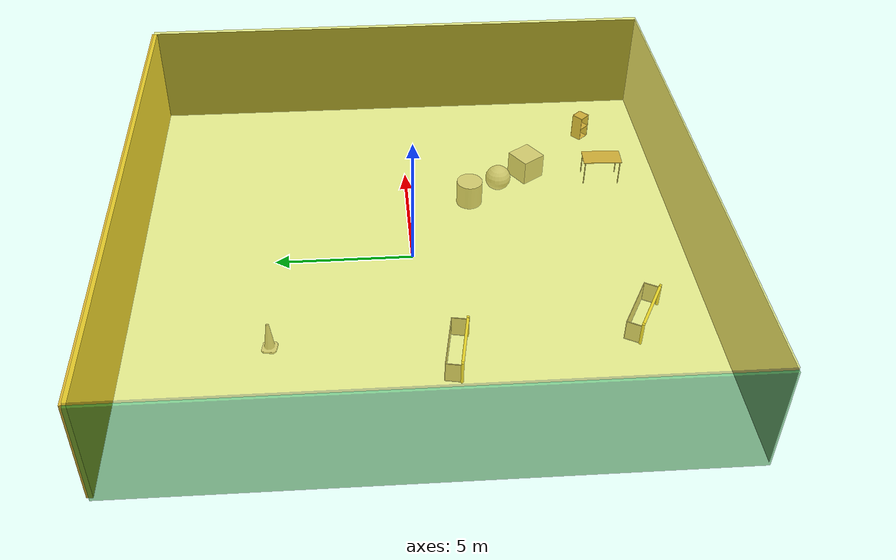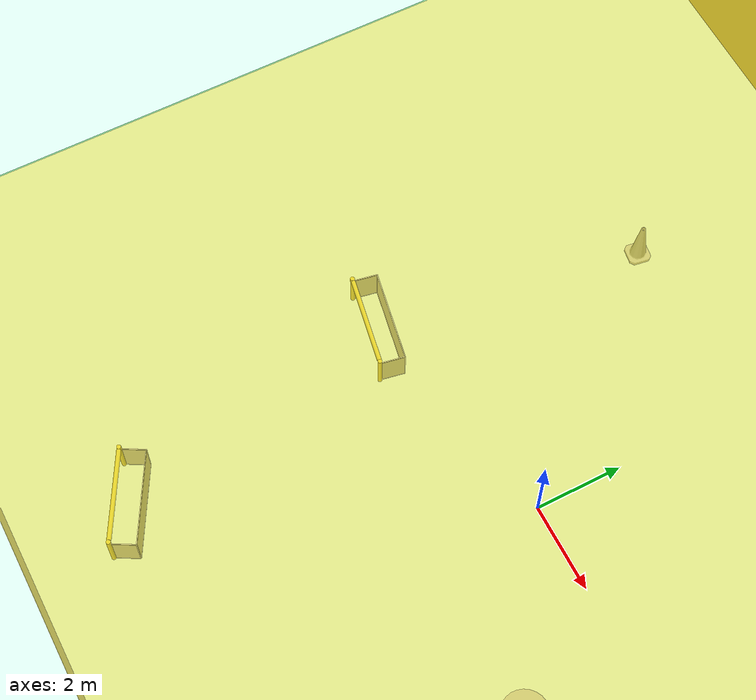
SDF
<sdf version="1.4">
 <world name="default">
  <physics type="ode">
   <max_step_size>0.001</max_step_size>
   <real_time_factor>1</real_time_factor>
   <real_time_update_rate>1000</real_time_update_rate>
   <gravity>0 0 -9.8</gravity>
  </physics>
  <scene><ambient>0.4 0.4 0.4 1</ambient><background>0.7 0.7 0.7 1</background><shadows>1</shadows></scene>
  <model name="Surrounding">
   <static>1</static>
   <link name="Ceiling">
    <collision name="Ceiling_Collision"><geometry><box><size>20 20 0.1</size></box></geometry></collision>
    <visual name="Ceiling_Visual">
     <geometry><box><size>20 20 0.1</size></box></geometry>
     <material>
      <script>
       <uri>file://media/materials/scripts/gazebo.material</uri>
       <name>Gazebo/YellowTransparent</name>
      </script>
     </material>
    </visual>
    <pose>0 0 4.05 0 0 0</pose>
   </link>
   <link name="Wall_South">
    <collision name="Wall_South_Collision">
     <geometry><box><size>20 0 4</size></box></geometry>
     <pose>0 0 2 0 -0 0</pose>
    </collision>
    <visual name="Wall_South_Visual">
     <pose>0 0 2 0 -0 0</pose>
     <geometry><box><size>20 0 4</size></box></geometry>
     <material>
      <script><uri>file://media/materials/scripts/gazebo.material</uri><name>Gazebo/PioneerBody</name></script>
     </material>
    </visual>
    <velocity_decay><linear>0</linear><angular>0</angular></velocity_decay>
    <pose>0 -10 0 0 -0 0</pose>
   </link>
   <link name="Wall_East">
    <collision name="Wall_21_Collision">
     <geometry><box><size>20 0 4</size></box></geometry>
     <pose>0 0 2 0 -0 0</pose>
    </collision>
    <visual name="Wall_21_Visual">
     <pose>0 0 2 0 -0 0</pose>
     <geometry><box><size>20 0 4</size></box></geometry>
     <material>
      <script><uri>file://media/materials/scripts/gazebo.material</uri><name>Gazebo/Black</name></script>
     </material>
    </visual>
    <velocity_decay><linear>0</linear><angular>0</angular></velocity_decay>
    <pose>10 0 0 0 -0 1.5708</pose>
   </link>
   <link name="Wall_North">
    <collision name="Wall_22_Collision">
     <geometry><box><size>20 0.2 4</size></box></geometry>
     <pose>0 0 2 0 -0 0</pose>
    </collision>
    <visual name="Wall_22_Visual">
     <pose>0 0 2 0 -0 0</pose>
     <geometry><box><size>20 0.2 4</size></box></geometry>
     <material>
      <script><uri>file://media/materials/scripts/gazebo.material</uri><name>Gazebo/Gold</name></script>
     </material>
    </visual>
    <velocity_decay><linear>0</linear><angular>0</angular></velocity_decay>
    <pose>0 10 0 0 -0 0</pose>
   </link>
   <link name="Wall_West">
    <collision name="Wall_23_Collision">
     <geometry><box><size>20 0.2 4</size></box></geometry>
     <pose>0 0 2 0 -0 0</pose>
    </collision>
    <visual name="Wall_23_Visual">
     <pose>0 0 2 0 -0 0</pose>
     <geometry><box><size>20 0.2 4</size></box></geometry>
     <material>
      <script><uri>file://media/materials/scripts/gazebo.material</uri><name>Gazebo/GreenTransparent</name></script>
     </material>
    </visual>
    <velocity_decay><linear>0</linear><angular>0</angular></velocity_decay>
    <pose>-10 0 0 0 0 -1.5708</pose>
   </link>
   <link name="Ground_link">
    <collision name="collision">
     <pose>0 0 .05 0 -0 0</pose>
     <geometry><box><size>20 20 0.1</size></box></geometry>
    </collision>
    <visual name="visual">
     <pose>0 0 .05 0 -0 0</pose>
     <geometry><box><size>20 20 0.1</size></box></geometry>
     <material>
      <script><uri>file://media/materials/scripts/gazebo.material</uri><name>Gazebo/GreenTransparent</name></script>
     </material>
    </visual>
   </link>
   <static>1</static>
  </model>
  <spherical_coordinates>
   <surface_model>EARTH_WGS84</surface_model>
   <latitude_deg>0</latitude_deg>
   <longitude_deg>0</longitude_deg>
   <elevation>0</elevation>
   <heading_deg>0</heading_deg>
  </spherical_coordinates>
  <light name="lightball_0" type="diffuse">
   <diffuse>0.8 0.8 0.8 1</diffuse>
   <specular>0.2 0.2 0.2 1</specular>
   <attenuation>
    <range>100</range>
    <constant>0.7</constant>
    <linear>0.01</linear>
    <quadratic>0.001</quadratic>
   </attenuation>
   <direction>-0.5 0.1 -0.9</direction>
   <pose>0.941785899909 8.9342785812 3.54500560225 0 0 0</pose>
  </light>
  <light name="lightball_1" type="diffuse">
   <diffuse>0.8 0.8 0.8 1</diffuse>
   <specular>0.2 0.2 0.2 1</specular>
   <attenuation>
    <range>100</range>
    <constant>0.7</constant>
    <linear>0.01</linear>
    <quadratic>0.001</quadratic>
   </attenuation>
   <direction>-0.5 0.1 -0.9</direction>
   <pose>-8.75070787517 6.54328158404 0.745170877195 0 0 0</pose>
  </light>
  <light name="lightball_2" type="diffuse">
   <diffuse>0.8 0.8 0.8 1</diffuse>
   <specular>0.2 0.2 0.2 1</specular>
   <attenuation>
    <range>100</range>
    <constant>0.7</constant>
    <linear>0.01</linear>
    <quadratic>0.001</quadratic>
   </attenuation>
   <direction>-0.5 0.1 -0.9</direction>
   <pose>-8.10415768757 -0.683570442432 1.53839018233 0 0 0</pose>
  </light>
  <light name="lightball_3" type="diffuse">
   <diffuse>0.8 0.8 0.8 1</diffuse>
   <specular>0.2 0.2 0.2 1</specular>
   <attenuation>
    <range>100</range>
    <constant>0.7</constant>
    <linear>0.01</linear>
    <quadratic>0.001</quadratic>
   </attenuation>
   <direction>-0.5 0.1 -0.9</direction>
   <pose>5.93706644758 -7.95235899738 2.19666040429 0 0 0</pose>
  </light>
  <light name="lightball_4" type="diffuse">
   <diffuse>0.8 0.8 0.8 1</diffuse>
   <specular>0.2 0.2 0.2 1</specular>
   <attenuation>
    <range>100</range>
    <constant>0.7</constant>
    <linear>0.01</linear>
    <quadratic>0.001</quadratic>
   </attenuation>
   <direction>-0.5 0.1 -0.9</direction>
   <pose>-6.85530718837 7.97816677546 0.744249088542 0 0 0</pose>
  </light>
  <light name="lightball_5" type="diffuse">
   <diffuse>0.8 0.8 0.8 1</diffuse>
   <specular>0.2 0.2 0.2 1</specular>
   <attenuation>
    <range>100</range>
    <constant>0.7</constant>
    <linear>0.01</linear>
    <quadratic>0.001</quadratic>
   </attenuation>
   <direction>-0.5 0.1 -0.9</direction>
   <pose>6.11688767817 2.29832853895 1.00740310271 0 0 0</pose>
  </light>
  <light name="lightball_6" type="diffuse">
   <diffuse>0.8 0.8 0.8 1</diffuse>
   <specular>0.2 0.2 0.2 1</specular>
   <attenuation>
    <range>100</range>
    <constant>0.7</constant>
    <linear>0.01</linear>
    <quadratic>0.001</quadratic>
   </attenuation>
   <direction>-0.5 0.1 -0.9</direction>
   <pose>-7.3464241 7.88478289111 1.09504878837 0 0 0</pose>
  </light>
  <light name="lightball_7" type="diffuse">
   <diffuse>0.8 0.8 0.8 1</diffuse>
   <specular>0.2 0.2 0.2 1</specular>
   <attenuation>
    <range>100</range>
    <constant>0.7</constant>
    <linear>0.01</linear>
    <quadratic>0.001</quadratic>
   </attenuation>
   <direction>-0.5 0.1 -0.9</direction>
   <pose>1.85098234636 -9.77281495598 2.42418569676 0 0 0</pose>
  </light>
  <light name="lightball_8" type="diffuse">
   <diffuse>0.8 0.8 0.8 1</diffuse>
   <specular>0.2 0.2 0.2 1</specular>
   <attenuation>
    <range>100</range>
    <constant>0.7</constant>
    <linear>0.01</linear>
    <quadratic>0.001</quadratic>
   </attenuation>
   <direction>-0.5 0.1 -0.9</direction>
   <pose>-9.8730532029 -2.0192830969 1.65877718103 0 0 0</pose>
  </light>
  <light name="lightball_9" type="diffuse">
   <diffuse>0.8 0.8 0.8 1</diffuse>
   <specular>0.2 0.2 0.2 1</specular>
   <attenuation>
    <range>100</range>
    <constant>0.7</constant>
    <linear>0.01</linear>
    <quadratic>0.001</quadratic>
   </attenuation>
   <direction>-0.5 0.1 -0.9</direction>
   <pose>-0.0132283887332 -0.981296257874 3.75848236549 0 0 0</pose>
  </light>
  <light name="lightball_10" type="diffuse">
   <diffuse>0.8 0.8 0.8 1</diffuse>
   <specular>0.2 0.2 0.2 1</specular>
   <attenuation>
    <range>100</range>
    <constant>0.7</constant>
    <linear>0.01</linear>
    <quadratic>0.001</quadratic>
   </attenuation>
   <direction>-0.5 0.1 -0.9</direction>
   <pose>-4.10944742647 -3.93541404546 0.969388802877 0 0 0</pose>
  </light>
  <include>
   <uri>model://robocup_3Dsim_goal</uri>
   <pose>-3.96335307283 -7.80780249717 0 0 0 1.06366626258</pose>
  </include>
  <include>
   <uri>model://robocup_3Dsim_goal</uri>
   <pose>-5.19790102758 -1.37454057375 0 0 0 1.38549385659</pose>
  </include>
  <include>
   <uri>model://construction_cone</uri>
   <pose>-4.31780006376 5.046040027 0 0 0 1.41176783369</pose>
  </include>
  <include><uri>model://table</uri><pose>4.37461538086 -7.77234822574 0 0 0 1.52428681963</pose></include>
  <include>
   <uri>model://textured_shapes</uri>
   <pose>4.62844646707 -3.72498870718 0 0 0 0.594613005904</pose>
  </include>
  <include><uri>model://cabinet</uri><pose>7.37035303167 -7.51717621356 0 0 0 0.727333527562</pose></include>
 </world>
</sdf>

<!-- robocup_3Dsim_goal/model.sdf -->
<sdf version="1.5">
  <model name="robocup_3d_goal">
    <static>true</static>
    <link name="left_post">
      <pose>0 1.05 0.45 0 0 0</pose>
      <collision name="collision">
        <geometry>
          <cylinder>
            <radius>0.05</radius>
            <length>0.9</length>
          </cylinder>
        </geometry>
      </collision>
      <visual name="visual">
        <geometry>
          <cylinder>
            <radius>0.05</radius>
            <length>0.9</length>
          </cylinder>
        </geometry>
        <material>
          <script>
            <uri>file://media/materials/scripts/gazebo.material</uri>
            <name>Gazebo/ZincYellow</name>
          </script>
        </material>
      </visual>
    </link>
    <link name="left_support_horiz_lower">
      <pose>0.30 1.05 0.01 0 0 0</pose>
      <collision name="collision">
        <geometry>
          <box>
            <size>0.50 0.02 0.02</size>
          </box>
        </geometry>
      </collision>
      <visual name="visual">
        <geometry>
          <box>
            <size>0.50 0.02 0.02</size>
          </box>
        </geometry>
        <material>
          <script>
            <uri>file://media/materials/scripts/gazebo.material</uri>
            <name>Gazebo/White</name>
          </script>
        </material>
      </visual>
    </link>
    <link name="left_support_horiz_upper">
      <pose>0.30 1.05 0.79 0 0 0</pose>
      <collision name="collision">
        <geometry>
          <box>
            <size>0.50 0.02 0.02</size>
          </box>
        </geometry>
      </collision>
      <visual name="visual">
        <geometry>
          <box>
            <size>0.50 0.02 0.02</size>
          </box>
        </geometry>
        <material>
          <script>
            <uri>file://media/materials/scripts/gazebo.material</uri>
            <name>Gazebo/White</name>
          </script>
        </material>
      </visual>
    </link>
    <link name="left_support_vertical">
      <pose>0.56 1.05 0.4 0 1.5708 0</pose>
      <collision name="collision">
        <geometry>
          <box>
            <size>0.80 0.02 0.02</size>
          </box>
        </geometry>
      </collision>
      <visual name="visual">
        <geometry>
          <box>
            <size>0.80 0.02 0.02</size>
          </box>
        </geometry>
        <material>
          <script>
            <uri>file://media/materials/scripts/gazebo.material</uri>
            <name>Gazebo/White</name>
          </script>
        </material>
      </visual>
    </link>
    <link name="right_support_horiz_lower">
      <pose>0.30 -1.05 0.01 0 0 0</pose>
      <collision name="collision">
        <geometry>
          <box>
            <size>0.50 0.02 0.02</size>
          </box>
        </geometry>
      </collision>
      <visual name="visual">
        <geometry>
          <box>
            <size>0.50 0.02 0.02</size>
          </box>
        </geometry>
        <material>
          <script>
            <uri>file://media/materials/scripts/gazebo.material</uri>
            <name>Gazebo/White</name>
          </script>
        </material>
      </visual>
    </link>
    <link name="right_support_horiz_upper">
      <pose>0.30 -1.05 0.79 0 0 0</pose>
      <collision name="collision">
        <geometry>
          <box>
            <size>0.50 0.02 0.02</size>
          </box>
        </geometry>
      </collision>
      <visual name="visual">
        <geometry>
          <box>
            <size>0.50 0.02 0.02</size>
          </box>
        </geometry>
        <material>
          <script>
            <uri>file://media/materials/scripts/gazebo.material</uri>
            <name>Gazebo/White</name>
          </script>
        </material>
      </visual>
    </link>
    <link name="right_support_vertical">
      <pose>0.56 -1.05 0.4 0 1.5708 0</pose>
      <collision name="collision">
        <geometry>
          <box>
            <size>0.80 0.02 0.02</size>
          </box>
        </geometry>
      </collision>
      <visual name="visual">
        <geometry>
          <box>
            <size>0.80 0.02 0.02</size>
          </box>
        </geometry>
        <material>
          <script>
            <uri>file://media/materials/scripts/gazebo.material</uri>
            <name>Gazebo/White</name>
          </script>
        </material>
      </visual>
    </link>
    <link name="center_support_horiz_lower">
      <pose>0.56 0 0.01 0 1.5708 0</pose>
      <collision name="collision">
        <geometry>
          <box>
            <size>0.02 2.08 0.02</size>
          </box>
        </geometry>
      </collision>
      <visual name="visual">
        <geometry>
          <box>
            <size>0.02 2.08 0.02</size>
          </box>
        </geometry>
        <material>
          <script>
            <uri>file://media/materials/scripts/gazebo.material</uri>
            <name>Gazebo/White</name>
          </script>
        </material>
      </visual>
    </link>
    <link name="center_support_horiz_upper">
      <pose>0.56 0 0.79 0 1.5708 0</pose>
      <collision name="collision">
        <geometry>
          <box>
            <size>0.02 2.08 0.02</size>
          </box>
        </geometry>
      </collision>
      <visual name="visual">
        <geometry>
          <box>
            <size>0.02 2.08 0.02</size>
          </box>
        </geometry>
        <material>
          <script>
            <uri>file://media/materials/scripts/gazebo.material</uri>
            <name>Gazebo/White</name>
          </script>
        </material>
      </visual>
    </link>
    <link name="right_post">
      <pose>0 -1.05 0.45 0 0 0</pose>
      <collision name="collision">
        <geometry>
          <cylinder>
            <radius>0.05</radius>
            <length>0.9</length>
          </cylinder>
        </geometry>
      </collision>
      <visual name="visual">
        <geometry>
          <cylinder>
            <radius>0.05</radius>
            <length>0.9</length>
          </cylinder>
        </geometry>
        <material>
          <script>
            <uri>file://media/materials/scripts/gazebo.material</uri>
            <name>Gazebo/ZincYellow</name>
          </script>
        </material>
      </visual>
    </link>
    <link name="crossbar">
      <pose>0 0 0.85 1.57 1.57 0</pose>
      <collision name="collision">
        <geometry>
          <cylinder>
            <radius>0.05</radius>
            <length>2.0</length>
          </cylinder>
        </geometry>
      </collision>
      <visual name="visual">
        <geometry>
          <cylinder>
            <radius>0.05</radius>
            <length>2.0</length>
          </cylinder>
        </geometry>
        <material>
          <script>
            <uri>file://media/materials/scripts/gazebo.material</uri>
            <name>Gazebo/ZincYellow</name>
          </script>
        </material>
      </visual>
    </link>
    <link name="center_net">
      <pose>0.56 0 0.40 0 0 0</pose>
      <collision name="collision">
        <geometry>
          <box>
            <size>0.01 2.1 0.80</size>
          </box>
        </geometry>
      </collision>
      <visual name="visual">
        <geometry>
          <box>
            <size>0.01 2.1 0.80</size>
          </box>
        </geometry>
        <material>
          <script>
            <uri>model://../model_source/models/robocup09_spl_field/materials/scripts/</uri>
            <uri>model://../model_source/models/robocup09_spl_field/materials/textures/</uri>
            <name>RoboCup/Net</name>
          </script>
        </material>
      </visual>
    </link>
    <link name="left_net">
      <pose>0.30 1.05 0.40 0 0 0</pose>
      <collision name="collision">
        <geometry>
          <box>
            <size>0.50 0.01 0.76</size>
          </box>
        </geometry>
      </collision>
      <visual name="visual">
        <geometry>
          <box>
            <size>0.50 0.01 0.76</size>
          </box>
        </geometry>
        <material>
          <script>
            <uri>model://../model_source/models/robocup09_spl_field/materials/scripts/</uri>
            <uri>model://../model_source/models/robocup09_spl_field/materials/textures/</uri>
            <name>RoboCup/Net</name>
          </script>
        </material>
      </visual>
    </link>
    <link name="right_net">
      <pose>0.30 -1.05 0.40 0 0 0</pose>
      <collision name="collision">
        <geometry>
          <box>
            <size>0.50 0.01 0.76</size>
          </box>
        </geometry>
      </collision>
      <visual name="visual">
        <geometry>
          <box>
            <size>0.50 0.01 0.76</size>
          </box>
        </geometry>
        <material>
          <script>
            <uri>model://../model_source/models/robocup09_spl_field/materials/scripts/</uri>
            <uri>model://../model_source/models/robocup09_spl_field/materials/textures/</uri>
            <name>RoboCup/Net</name>
          </script>
        </material>
      </visual>
    </link>
  </model>
</sdf>

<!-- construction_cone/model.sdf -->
<sdf version="1.5">
  <model name="Construction Cone">
    <link name="link">
      <collision name="collision">
        <geometry>
          <mesh>
            <scale>10 10 10</scale>
            <uri>file://isr-testbed/construction_cone/meshes/construction_cone.dae</uri>
          </mesh>
        </geometry>
      </collision>
      <visual name="visual">
        <geometry>
          <mesh>
            <scale>10 10 10</scale>
            <uri>file://isr-testbed/construction_cone/meshes/construction_cone.dae</uri>
          </mesh>
        </geometry>
      </visual>
    </link>
  </model>
</sdf>

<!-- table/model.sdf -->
<sdf version="1.5">
  <model name="table">
    <static>true</static>
    <link name="link">
      <collision name="surface">
        <pose>0 0 1.0 0 0 0</pose>
        <geometry>
          <box>
            <size>1.5 0.8 0.03</size>
          </box>
        </geometry>
        <surface>
          <friction>
            <ode>
              <mu>0.6</mu>
              <mu2>0.6</mu2>
            </ode>
          </friction>
        </surface>
      </collision>
      <visual name="visual1">
        <pose>0 0 1.0 0 0 0</pose>
        <geometry>
          <box>
            <size>1.5 0.8 0.03</size>
          </box>
        </geometry>
        <material>
          <script>
            <uri>model://media/materials/scripts/gazebo.material</uri>
            <name>Gazebo/Wood</name>
          </script>
        </material>
      </visual>
      <collision name="front_left_leg">
        <pose>0.68 0.38 0.5 0 0 0</pose>
        <geometry>
          <cylinder>
            <radius>0.02</radius>
            <length>1.0</length>
          </cylinder>
        </geometry>
      </collision>
      <visual name="front_left_leg">
        <pose>0.68 0.38 0.5 0 0 0</pose>
        <geometry>
          <cylinder>
            <radius>0.02</radius>
            <length>1.0</length>
          </cylinder>
        </geometry>
        <material>
          <script>
            <uri>model://media/materials/scripts/gazebo.material</uri>
            <name>Gazebo/Grey</name>
          </script>
        </material>
      </visual>
      <collision name="front_right_leg">
        <pose>0.68 -0.38 0.5 0 0 0</pose>
        <geometry>
          <cylinder>
            <radius>0.02</radius>
            <length>1.0</length>
          </cylinder>
        </geometry>
      </collision>
      <visual name="front_right_leg">
        <pose>0.68 -0.38 0.5 0 0 0</pose>
        <geometry>
          <cylinder>
            <radius>0.02</radius>
            <length>1.0</length>
          </cylinder>
        </geometry>
        <material>
          <script>
            <uri>model://media/materials/scripts/gazebo.material</uri>
            <name>Gazebo/Grey</name>
          </script>
        </material>
      </visual>
      <collision name="back_right_leg">
        <pose>-0.68 -0.38 0.5 0 0 0</pose>
        <geometry>
          <cylinder>
            <radius>0.02</radius>
            <length>1.0</length>
          </cylinder>
        </geometry>
      </collision>
      <visual name="back_right_leg">
        <pose>-0.68 -0.38 0.5 0 0 0</pose>
        <geometry>
          <cylinder>
            <radius>0.02</radius>
            <length>1.0</length>
          </cylinder>
        </geometry>
        <material>
          <script>
            <uri>model://media/materials/scripts/gazebo.material</uri>
            <name>Gazebo/Grey</name>
          </script>
        </material>
      </visual>
      <collision name="back_left_leg">
        <pose>-0.68 0.38 0.5 0 0 0</pose>
        <geometry>
          <cylinder>
            <radius>0.02</radius>
            <length>1.0</length>
          </cylinder>
        </geometry>
      </collision>
      <visual name="back_left_leg">
        <pose>-0.68 0.38 0.5 0 0 0</pose>
        <geometry>
          <cylinder>
            <radius>0.02</radius>
            <length>1.0</length>
          </cylinder>
        </geometry>
        <material>
          <script>
            <uri>model://media/materials/scripts/gazebo.material</uri>
            <name>Gazebo/Grey</name>
          </script>
        </material>
      </visual>
    </link>
  </model>
</sdf>

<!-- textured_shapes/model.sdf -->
<sdf version="1.6">
  <model name="textured_shapes">
    <pose>0 0 0.5 0 0 0</pose>
    <link name="box">
      <pose>0 -1.5 0 0 0 0</pose>
      <collision name="collision">
        <geometry>
          <box>
            <size>1 1 1</size>
          </box>
        </geometry>
      </collision>
      <visual name="visual">
        <geometry>
          <box>
            <size>1 1 1</size>
          </box>
        </geometry>
        <material>
          <script>
            <uri>model://../model_source/models/textured_shapes/materials/scripts</uri>
            <uri>model://../model_source/models/textured_shapes/materials/textures</uri>
            <name>TexturedShape/Squares</name>
          </script>
        </material>
      </visual>
    </link>
    <link name="sphere">
      <collision name="collision">
        <geometry>
          <sphere>
            <radius>0.5</radius>
          </sphere>
        </geometry>
      </collision>
      <visual name="visual">
        <geometry>
          <sphere>
            <radius>0.5</radius>
          </sphere>
        </geometry>
        <material>
          <script>
            <uri>model://../model_source/models/textured_shapes/materials/scripts</uri>
            <uri>model://../model_source/models/textured_shapes/materials/textures</uri>
            <name>TexturedShape/Squares</name>
          </script>
        </material>
      </visual>
    </link>
    <link name="cylinder">
      <pose>0 1.5 0 0 0 0</pose>
      <collision name="collision">
        <geometry>
          <cylinder>
            <radius>0.5</radius>
            <length>1</length>
          </cylinder>
        </geometry>
      </collision>
      <visual name="visual">
        <geometry>
          <cylinder>
            <radius>0.5</radius>
            <length>1</length>
          </cylinder>
        </geometry>
        <material>
          <script>
            <uri>model://../model_source/models/textured_shapes/materials/scripts</uri>
            <uri>model://../model_source/models/textured_shapes/materials/textures</uri>
            <name>TexturedShape/Squares</name>
          </script>
        </material>
      </visual>
    </link>
  </model>
</sdf>

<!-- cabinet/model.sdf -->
<sdf version="1.5">
  <model name="cabinet">
    <static>true</static>
    <link name="cabinet_bottom_plate">
      <inertial>
        <pose>0 0 -1 0 0 0</pose>
        <inertia>
          <ixx>2.050000</ixx>
          <ixy>0</ixy>
          <ixz>0</ixz>
          <iyy>2.050000</iyy>
          <iyz>0</iyz>
          <izz>2.050000</izz>
        </inertia>
        <mass>25.000000</mass>
      </inertial>
      <collision name="cabinet_bottom_plate_geom">
        <pose>0 0 0.010000 0 0 0</pose>
        <geometry>
          <box>
            <size>0.450000 0.450000 0.020000</size>
          </box>
        </geometry>
      </collision>
      <visual name="cabinet_bottom_plate_geom_visual">
        <pose>0 0 0.010000 0 0 0</pose>
        <geometry>
          <box>
            <size>0.450000 0.450000 0.020000</size>
          </box>
        </geometry>
        <material>
          <script>
            <uri>model://media/materials/scripts/gazebo.material</uri>
            <name>Gazebo/Wood</name>
          </script>
        </material>
      </visual>
      <collision name="cabinet_bottom_plate_geom_cabinet_back_plate">
        <pose>0.235000 0 0.510000 0 0 0</pose>
        <geometry>
          <box>
            <size>0.020000 0.450000 1.020000</size>
          </box>
        </geometry>
      </collision>
      <visual name="cabinet_bottom_plate_geom_cabinet_back_plate_visual">
        <pose>0.235000 0 0.510000 0 0 0</pose>
        <geometry>
          <box>
            <size>0.020000 0.450000 1.020000</size>
          </box>
        </geometry>
        <material>
          <script>
            <uri>model://media/materials/scripts/gazebo.material</uri>
            <name>Gazebo/Wood</name>
          </script>
        </material>
      </visual>
      <collision name="cabinet_bottom_plate_geom_cabinet_left_plate">
        <pose>0 0.235000 0.510000 0 0 0</pose>
        <geometry>
          <box>
            <size>0.450000 0.020000 1.020000</size>
          </box>
        </geometry>
      </collision>
      <visual name="cabinet_bottom_plate_geom_cabinet_left_plate_visual">
        <pose>0 0.235000 0.510000 0 0 0</pose>
        <geometry>
          <box>
            <size>0.450000 0.020000 1.020000</size>
          </box>
        </geometry>
        <material>
          <script>
            <uri>model://media/materials/scripts/gazebo.material</uri>
            <name>Gazebo/Wood</name>
          </script>
        </material>
      </visual>
      <collision name="cabinet_bottom_plate_geom_cabinet_middle_plate">
        <pose>0 0 0.510000 0 0 0</pose>
        <geometry>
          <box>
            <size>0.450000 0.450000 0.020000</size>
          </box>
        </geometry>
      </collision>
      <visual name="cabinet_bottom_plate_geom_cabinet_middle_plate_visual">
        <pose>0 0 0.510000 0 0 0</pose>
        <geometry>
          <box>
            <size>0.450000 0.450000 0.020000</size>
          </box>
        </geometry>
        <material>
          <script>
            <uri>model://media/materials/scripts/gazebo.material</uri>
            <name>Gazebo/Wood</name>
          </script>
        </material>
      </visual>
      <collision name="cabinet_bottom_plate_geom_cabinet_right_plate">
        <pose>0 -0.235000 0.510000 0 0 0</pose>
        <geometry>
          <box>
            <size>0.450000 0.020000 1.020000</size>
          </box>
        </geometry>
      </collision>
      <visual name="cabinet_bottom_plate_geom_cabinet_right_plate_visual">
        <pose>0 -0.235000 0.510000 0 0 0</pose>
        <geometry>
          <box>
            <size>0.450000 0.020000 1.020000</size>
          </box>
        </geometry>
        <material>
          <script>
            <uri>model://media/materials/scripts/gazebo.material</uri>
            <name>Gazebo/Wood</name>
          </script>
        </material>
      </visual>
      <collision name="cabinet_bottom_plate_geom_cabinet_top_plate">
        <pose>0 0 1.010000 0 0 0</pose>
        <geometry>
          <box>
            <size>0.450000 0.450000 0.020000</size>
          </box>
        </geometry>
      </collision>
      <visual name="cabinet_bottom_plate_geom_cabinet_top_plate_visual">
        <pose>0 0 1.010000 0 0 0</pose>
        <geometry>
          <box>
            <size>0.450000 0.450000 0.020000</size>
          </box>
        </geometry>
        <material>
          <script>
            <uri>model://media/materials/scripts/gazebo.material</uri>
            <name>Gazebo/Wood</name>
          </script>
        </material>
      </visual>
    </link>
  </model>
</sdf>
